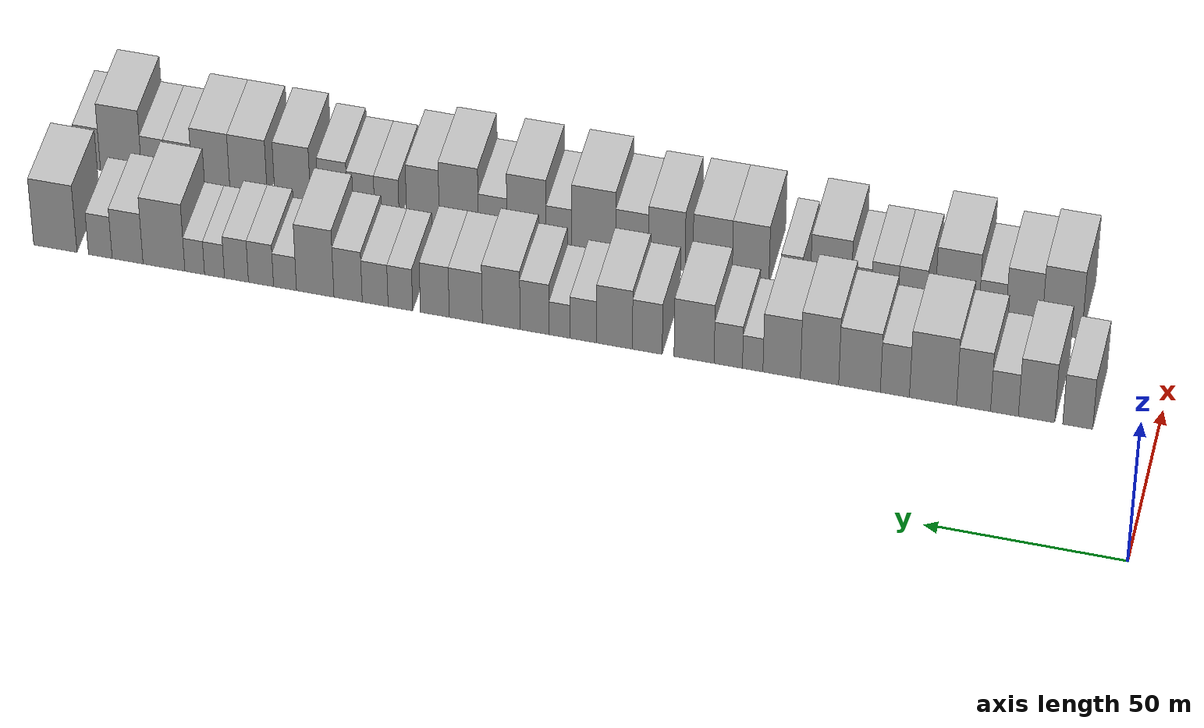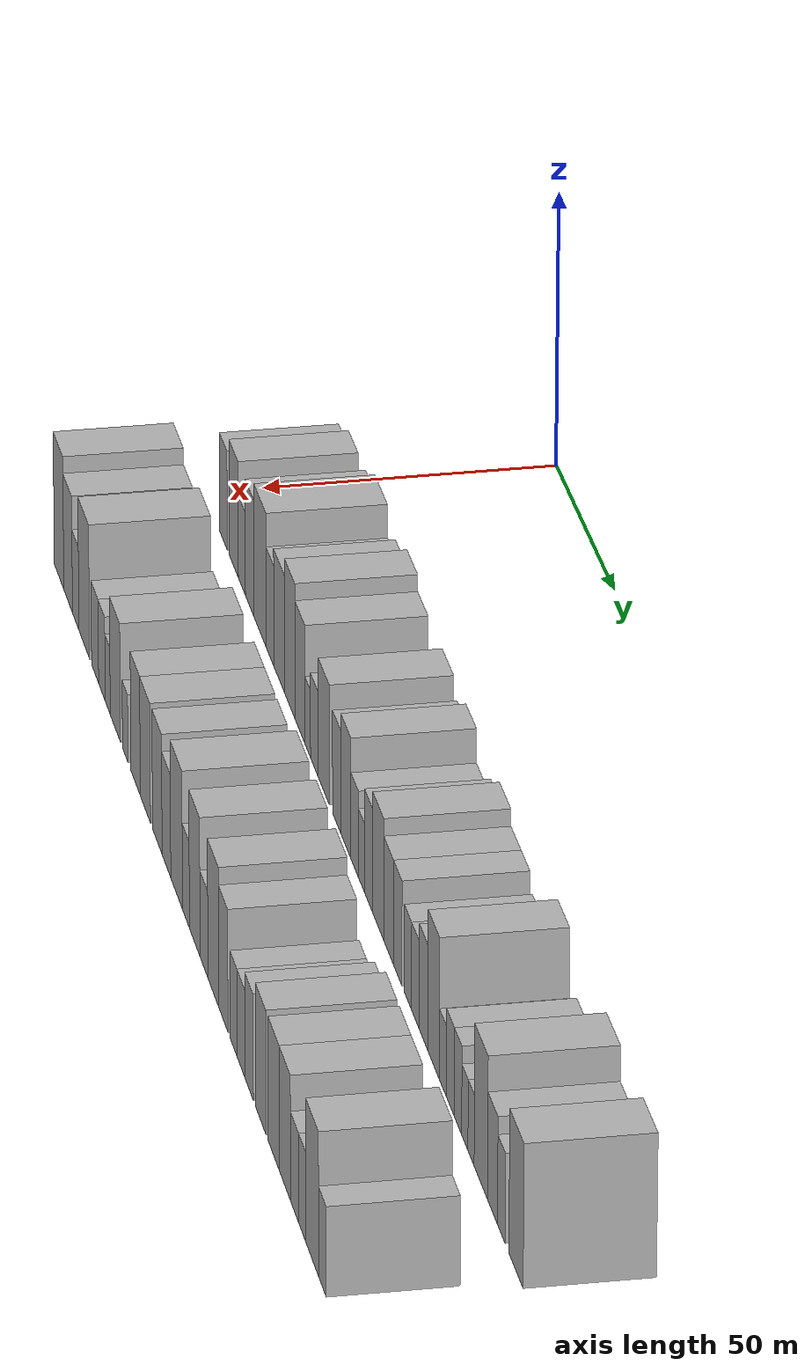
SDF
<sdf version="1.6">
 <world name="default">
  <model name="building_30">
   <static>1</static>
   <pose>50.0000 19.5542 0 0.000000 0.000000 0.000000</pose>
   <link name="link">
    <pose>0 0 9.00 0 0 0</pose>
    <collision name="collision"><geometry><box><size>20.0000 7.4699 18.0000</size></box></geometry></collision>
    <visual name="visual">
     <cast_shadows>0</cast_shadows>
     <geometry><box><size>20.0000 7.4699 18.0000</size></box></geometry>
     <material>
      <script>
       <uri>model://HANNAS_wall/materials/scripts</uri>
       <uri>model://HANNAS_wall/materials/textures</uri>
       <name>vrc/HANNAS_wall</name>
      </script>
     </material>
    </visual>
   </link>
  </model>
  <model name="building_31">
   <static>1</static>
   <pose>50.0000 29.8147 0 0.000000 0.000000 0.000000</pose>
   <link name="link">
    <pose>0 0 10.50 0 0 0</pose>
    <collision name="collision"><geometry><box><size>20.0000 9.0512 21.0000</size></box></geometry></collision>
    <visual name="visual">
     <cast_shadows>0</cast_shadows>
     <geometry><box><size>20.0000 9.0512 21.0000</size></box></geometry>
     <material>
      <script>
       <uri>model://HANNAS_wall/materials/scripts</uri>
       <uri>model://HANNAS_wall/materials/textures</uri>
       <name>vrc/HANNAS_wall</name>
      </script>
     </material>
    </visual>
   </link>
  </model>
  <model name="building_32">
   <static>1</static>
   <pose>50.0000 37.8138 0 0.000000 0.000000 0.000000</pose>
   <link name="link">
    <pose>0 0 7.50 0 0 0</pose>
    <collision name="collision"><geometry><box><size>20.0000 6.9470 15.0000</size></box></geometry></collision>
    <visual name="visual">
     <cast_shadows>0</cast_shadows>
     <geometry><box><size>20.0000 6.9470 15.0000</size></box></geometry>
     <material>
      <script>
       <uri>model://HANNAS_wall/materials/scripts</uri>
       <uri>model://HANNAS_wall/materials/textures</uri>
       <name>vrc/HANNAS_wall</name>
      </script>
     </material>
    </visual>
   </link>
  </model>
  <model name="building_33">
   <static>1</static>
   <pose>50.0000 45.5488 0 0.000000 0.000000 0.000000</pose>
   <link name="link">
    <pose>0 0 10.50 0 0 0</pose>
    <collision name="collision"><geometry><box><size>20.0000 8.5230 21.0000</size></box></geometry></collision>
    <visual name="visual">
     <cast_shadows>0</cast_shadows>
     <geometry><box><size>20.0000 8.5230 21.0000</size></box></geometry>
     <material>
      <script>
       <uri>model://HANNAS_wall/materials/scripts</uri>
       <uri>model://HANNAS_wall/materials/textures</uri>
       <name>vrc/HANNAS_wall</name>
      </script>
     </material>
    </visual>
   </link>
  </model>
  <model name="building_34">
   <static>1</static>
   <pose>50.0000 55.7005 0 0.000000 0.000000 0.000000</pose>
   <link name="link">
    <pose>0 0 12.00 0 0 0</pose>
    <collision name="collision"><geometry><box><size>20.0000 11.7803 24.0000</size></box></geometry></collision>
    <visual name="visual">
     <cast_shadows>0</cast_shadows>
     <geometry><box><size>20.0000 11.7803 24.0000</size></box></geometry>
     <material>
      <script>
       <uri>model://HANNAS_wall/materials/scripts</uri>
       <uri>model://HANNAS_wall/materials/textures</uri>
       <name>vrc/HANNAS_wall</name>
      </script>
     </material>
    </visual>
   </link>
  </model>
  <model name="building_35">
   <static>1</static>
   <pose>50.0000 65.2430 0 0.000000 0.000000 0.000000</pose>
   <link name="link">
    <pose>0 0 9.00 0 0 0</pose>
    <collision name="collision"><geometry><box><size>20.0000 7.3048 18.0000</size></box></geometry></collision>
    <visual name="visual">
     <cast_shadows>0</cast_shadows>
     <geometry><box><size>20.0000 7.3048 18.0000</size></box></geometry>
     <material>
      <script>
       <uri>model://HANNAS_wall/materials/scripts</uri>
       <uri>model://HANNAS_wall/materials/textures</uri>
       <name>vrc/HANNAS_wall</name>
      </script>
     </material>
    </visual>
   </link>
  </model>
  <model name="building_36">
   <static>1</static>
   <pose>50.0000 74.1311 0 0.000000 0.000000 0.000000</pose>
   <link name="link">
    <pose>0 0 10.50 0 0 0</pose>
    <collision name="collision"><geometry><box><size>20.0000 10.4713 21.0000</size></box></geometry></collision>
    <visual name="visual">
     <cast_shadows>0</cast_shadows>
     <geometry><box><size>20.0000 10.4713 21.0000</size></box></geometry>
     <material>
      <script>
       <uri>model://HANNAS_wall/materials/scripts</uri>
       <uri>model://HANNAS_wall/materials/textures</uri>
       <name>vrc/HANNAS_wall</name>
      </script>
     </material>
    </visual>
   </link>
  </model>
  <model name="building_37">
   <static>1</static>
   <pose>50.0000 84.1854 0 0.000000 0.000000 0.000000</pose>
   <link name="link">
    <pose>0 0 12.00 0 0 0</pose>
    <collision name="collision"><geometry><box><size>20.0000 9.6375 24.0000</size></box></geometry></collision>
    <visual name="visual">
     <cast_shadows>0</cast_shadows>
     <geometry><box><size>20.0000 9.6375 24.0000</size></box></geometry>
     <material>
      <script>
       <uri>model://HANNAS_wall/materials/scripts</uri>
       <uri>model://HANNAS_wall/materials/textures</uri>
       <name>vrc/HANNAS_wall</name>
      </script>
     </material>
    </visual>
   </link>
  </model>
  <model name="building_38">
   <static>1</static>
   <pose>50.0000 93.7305 0 0.000000 0.000000 0.000000</pose>
   <link name="link">
    <pose>0 0 10.50 0 0 0</pose>
    <collision name="collision"><geometry><box><size>20.0000 9.4528 21.0000</size></box></geometry></collision>
    <visual name="visual">
     <cast_shadows>0</cast_shadows>
     <geometry><box><size>20.0000 9.4528 21.0000</size></box></geometry>
     <material>
      <script>
       <uri>model://HANNAS_wall/materials/scripts</uri>
       <uri>model://HANNAS_wall/materials/textures</uri>
       <name>vrc/HANNAS_wall</name>
      </script>
     </material>
    </visual>
   </link>
  </model>
  <model name="building_39">
   <static>1</static>
   <pose>50.0000 101.0435 0 0.000000 0.000000 0.000000</pose>
   <link name="link">
    <pose>0 0 6.00 0 0 0</pose>
    <collision name="collision"><geometry><box><size>20.0000 5.1731 12.0000</size></box></geometry></collision>
    <visual name="visual">
     <cast_shadows>0</cast_shadows>
     <geometry><box><size>20.0000 5.1731 12.0000</size></box></geometry>
     <material>
      <script>
       <uri>model://HANNAS_wall/materials/scripts</uri>
       <uri>model://HANNAS_wall/materials/textures</uri>
       <name>vrc/HANNAS_wall</name>
      </script>
     </material>
    </visual>
   </link>
  </model>
  <model name="building_40">
   <static>1</static>
   <pose>50.0000 107.2192 0 0.000000 0.000000 0.000000</pose>
   <link name="link">
    <pose>0 0 7.50 0 0 0</pose>
    <collision name="collision"><geometry><box><size>20.0000 7.1782 15.0000</size></box></geometry></collision>
    <visual name="visual">
     <cast_shadows>0</cast_shadows>
     <geometry><box><size>20.0000 7.1782 15.0000</size></box></geometry>
     <material>
      <script>
       <uri>model://HANNAS_wall/materials/scripts</uri>
       <uri>model://HANNAS_wall/materials/textures</uri>
       <name>vrc/HANNAS_wall</name>
      </script>
     </material>
    </visual>
   </link>
  </model>
  <model name="building_41">
   <static>1</static>
   <pose>50.0000 115.8828 0 0.000000 0.000000 0.000000</pose>
   <link name="link">
    <pose>0 0 10.50 0 0 0</pose>
    <collision name="collision"><geometry><box><size>20.0000 10.1492 21.0000</size></box></geometry></collision>
    <visual name="visual">
     <cast_shadows>0</cast_shadows>
     <geometry><box><size>20.0000 10.1492 21.0000</size></box></geometry>
     <material>
      <script>
       <uri>model://HANNAS_wall/materials/scripts</uri>
       <uri>model://HANNAS_wall/materials/textures</uri>
       <name>vrc/HANNAS_wall</name>
      </script>
     </material>
    </visual>
   </link>
  </model>
  <model name="building_42">
   <static>1</static>
   <pose>50.0000 127.7314 0 0.000000 0.000000 0.000000</pose>
   <link name="link">
    <pose>0 0 9.00 0 0 0</pose>
    <collision name="collision"><geometry><box><size>20.0000 7.5479 18.0000</size></box></geometry></collision>
    <visual name="visual">
     <cast_shadows>0</cast_shadows>
     <geometry><box><size>20.0000 7.5479 18.0000</size></box></geometry>
     <material>
      <script>
       <uri>model://HANNAS_wall/materials/scripts</uri>
       <uri>model://HANNAS_wall/materials/textures</uri>
       <name>vrc/HANNAS_wall</name>
      </script>
     </material>
    </visual>
   </link>
  </model>
  <model name="building_43">
   <static>1</static>
   <pose>50.0000 136.0665 0 0.000000 0.000000 0.000000</pose>
   <link name="link">
    <pose>0 0 10.50 0 0 0</pose>
    <collision name="collision"><geometry><box><size>20.0000 9.1223 21.0000</size></box></geometry></collision>
    <visual name="visual">
     <cast_shadows>0</cast_shadows>
     <geometry><box><size>20.0000 9.1223 21.0000</size></box></geometry>
     <material>
      <script>
       <uri>model://HANNAS_wall/materials/scripts</uri>
       <uri>model://HANNAS_wall/materials/textures</uri>
       <name>vrc/HANNAS_wall</name>
      </script>
     </material>
    </visual>
   </link>
  </model>
  <model name="building_44">
   <static>1</static>
   <pose>50.0000 144.0214 0 0.000000 0.000000 0.000000</pose>
   <link name="link">
    <pose>0 0 7.50 0 0 0</pose>
    <collision name="collision"><geometry><box><size>20.0000 6.7875 15.0000</size></box></geometry></collision>
    <visual name="visual">
     <cast_shadows>0</cast_shadows>
     <geometry><box><size>20.0000 6.7875 15.0000</size></box></geometry>
     <material>
      <script>
       <uri>model://HANNAS_wall/materials/scripts</uri>
       <uri>model://HANNAS_wall/materials/textures</uri>
       <name>vrc/HANNAS_wall</name>
      </script>
     </material>
    </visual>
   </link>
  </model>
  <model name="building_45">
   <static>1</static>
   <pose>50.0000 150.0881 0 0.000000 0.000000 0.000000</pose>
   <link name="link">
    <pose>0 0 6.00 0 0 0</pose>
    <collision name="collision"><geometry><box><size>20.0000 5.3460 12.0000</size></box></geometry></collision>
    <visual name="visual">
     <cast_shadows>0</cast_shadows>
     <geometry><box><size>20.0000 5.3460 12.0000</size></box></geometry>
     <material>
      <script>
       <uri>model://HANNAS_wall/materials/scripts</uri>
       <uri>model://HANNAS_wall/materials/textures</uri>
       <name>vrc/HANNAS_wall</name>
      </script>
     </material>
    </visual>
   </link>
  </model>
  <model name="building_46">
   <static>1</static>
   <pose>50.0000 156.4604 0 0.000000 0.000000 0.000000</pose>
   <link name="link">
    <pose>0 0 9.00 0 0 0</pose>
    <collision name="collision"><geometry><box><size>20.0000 7.3986 18.0000</size></box></geometry></collision>
    <visual name="visual">
     <cast_shadows>0</cast_shadows>
     <geometry><box><size>20.0000 7.3986 18.0000</size></box></geometry>
     <material>
      <script>
       <uri>model://HANNAS_wall/materials/scripts</uri>
       <uri>model://HANNAS_wall/materials/textures</uri>
       <name>vrc/HANNAS_wall</name>
      </script>
     </material>
    </visual>
   </link>
  </model>
  <model name="building_47">
   <static>1</static>
   <pose>50.0000 164.9951 0 0.000000 0.000000 0.000000</pose>
   <link name="link">
    <pose>0 0 10.50 0 0 0</pose>
    <collision name="collision"><geometry><box><size>20.0000 9.6708 21.0000</size></box></geometry></collision>
    <visual name="visual">
     <cast_shadows>0</cast_shadows>
     <geometry><box><size>20.0000 9.6708 21.0000</size></box></geometry>
     <material>
      <script>
       <uri>model://HANNAS_wall/materials/scripts</uri>
       <uri>model://HANNAS_wall/materials/textures</uri>
       <name>vrc/HANNAS_wall</name>
      </script>
     </material>
    </visual>
   </link>
  </model>
  <model name="building_48">
   <static>1</static>
   <pose>50.0000 174.0774 0 0.000000 0.000000 0.000000</pose>
   <link name="link">
    <pose>0 0 9.00 0 0 0</pose>
    <collision name="collision"><geometry><box><size>20.0000 8.4938 18.0000</size></box></geometry></collision>
    <visual name="visual">
     <cast_shadows>0</cast_shadows>
     <geometry><box><size>20.0000 8.4938 18.0000</size></box></geometry>
     <material>
      <script>
       <uri>model://HANNAS_wall/materials/scripts</uri>
       <uri>model://HANNAS_wall/materials/textures</uri>
       <name>vrc/HANNAS_wall</name>
      </script>
     </material>
    </visual>
   </link>
  </model>
  <model name="building_49">
   <static>1</static>
   <pose>50.0000 182.0270 0 0.000000 0.000000 0.000000</pose>
   <link name="link">
    <pose>0 0 9.00 0 0 0</pose>
    <collision name="collision"><geometry><box><size>20.0000 7.4053 18.0000</size></box></geometry></collision>
    <visual name="visual">
     <cast_shadows>0</cast_shadows>
     <geometry><box><size>20.0000 7.4053 18.0000</size></box></geometry>
     <material>
      <script>
       <uri>model://HANNAS_wall/materials/scripts</uri>
       <uri>model://HANNAS_wall/materials/textures</uri>
       <name>vrc/HANNAS_wall</name>
      </script>
     </material>
    </visual>
   </link>
  </model>
  <model name="building_50">
   <static>1</static>
   <pose>50.0000 190.8925 0 0.000000 0.000000 0.000000</pose>
   <link name="link">
    <pose>0 0 7.50 0 0 0</pose>
    <collision name="collision"><geometry><box><size>20.0000 6.3257 15.0000</size></box></geometry></collision>
    <visual name="visual">
     <cast_shadows>0</cast_shadows>
     <geometry><box><size>20.0000 6.3257 15.0000</size></box></geometry>
     <material>
      <script>
       <uri>model://HANNAS_wall/materials/scripts</uri>
       <uri>model://HANNAS_wall/materials/textures</uri>
       <name>vrc/HANNAS_wall</name>
      </script>
     </material>
    </visual>
   </link>
  </model>
  <model name="building_51">
   <static>1</static>
   <pose>50.0000 197.3917 0 0.000000 0.000000 0.000000</pose>
   <link name="link">
    <pose>0 0 7.50 0 0 0</pose>
    <collision name="collision"><geometry><box><size>20.0000 6.6727 15.0000</size></box></geometry></collision>
    <visual name="visual">
     <cast_shadows>0</cast_shadows>
     <geometry><box><size>20.0000 6.6727 15.0000</size></box></geometry>
     <material>
      <script>
       <uri>model://HANNAS_wall/materials/scripts</uri>
       <uri>model://HANNAS_wall/materials/textures</uri>
       <name>vrc/HANNAS_wall</name>
      </script>
     </material>
    </visual>
   </link>
  </model>
  <model name="building_52">
   <static>1</static>
   <pose>50.0000 204.3835 0 0.000000 0.000000 0.000000</pose>
   <link name="link">
    <pose>0 0 9.00 0 0 0</pose>
    <collision name="collision"><geometry><box><size>20.0000 7.3110 18.0000</size></box></geometry></collision>
    <visual name="visual">
     <cast_shadows>0</cast_shadows>
     <geometry><box><size>20.0000 7.3110 18.0000</size></box></geometry>
     <material>
      <script>
       <uri>model://HANNAS_wall/materials/scripts</uri>
       <uri>model://HANNAS_wall/materials/textures</uri>
       <name>vrc/HANNAS_wall</name>
      </script>
     </material>
    </visual>
   </link>
  </model>
  <model name="building_53">
   <static>1</static>
   <pose>50.0000 212.8784 0 0.000000 0.000000 0.000000</pose>
   <link name="link">
    <pose>0 0 12.00 0 0 0</pose>
    <collision name="collision"><geometry><box><size>20.0000 9.6787 24.0000</size></box></geometry></collision>
    <visual name="visual">
     <cast_shadows>0</cast_shadows>
     <geometry><box><size>20.0000 9.6787 24.0000</size></box></geometry>
     <material>
      <script>
       <uri>model://HANNAS_wall/materials/scripts</uri>
       <uri>model://HANNAS_wall/materials/textures</uri>
       <name>vrc/HANNAS_wall</name>
      </script>
     </material>
    </visual>
   </link>
  </model>
  <model name="building_54">
   <static>1</static>
   <pose>50.0000 220.6890 0 0.000000 0.000000 0.000000</pose>
   <link name="link">
    <pose>0 0 6.00 0 0 0</pose>
    <collision name="collision"><geometry><box><size>20.0000 5.9426 12.0000</size></box></geometry></collision>
    <visual name="visual">
     <cast_shadows>0</cast_shadows>
     <geometry><box><size>20.0000 5.9426 12.0000</size></box></geometry>
     <material>
      <script>
       <uri>model://HANNAS_wall/materials/scripts</uri>
       <uri>model://HANNAS_wall/materials/textures</uri>
       <name>vrc/HANNAS_wall</name>
      </script>
     </material>
    </visual>
   </link>
  </model>
  <model name="building_55">
   <static>1</static>
   <pose>50.0000 226.9153 0 0.000000 0.000000 0.000000</pose>
   <link name="link">
    <pose>0 0 7.50 0 0 0</pose>
    <collision name="collision"><geometry><box><size>20.0000 6.5100 15.0000</size></box></geometry></collision>
    <visual name="visual">
     <cast_shadows>0</cast_shadows>
     <geometry><box><size>20.0000 6.5100 15.0000</size></box></geometry>
     <material>
      <script>
       <uri>model://HANNAS_wall/materials/scripts</uri>
       <uri>model://HANNAS_wall/materials/textures</uri>
       <name>vrc/HANNAS_wall</name>
      </script>
     </material>
    </visual>
   </link>
  </model>
  <model name="building_56">
   <static>1</static>
   <pose>50.0000 233.2833 0 0.000000 0.000000 0.000000</pose>
   <link name="link">
    <pose>0 0 7.50 0 0 0</pose>
    <collision name="collision"><geometry><box><size>20.0000 6.2258 15.0000</size></box></geometry></collision>
    <visual name="visual">
     <cast_shadows>0</cast_shadows>
     <geometry><box><size>20.0000 6.2258 15.0000</size></box></geometry>
     <material>
      <script>
       <uri>model://HANNAS_wall/materials/scripts</uri>
       <uri>model://HANNAS_wall/materials/textures</uri>
       <name>vrc/HANNAS_wall</name>
      </script>
     </material>
    </visual>
   </link>
  </model>
  <model name="building_57">
   <static>1</static>
   <pose>50.0000 238.9881 0 0.000000 0.000000 0.000000</pose>
   <link name="link">
    <pose>0 0 6.00 0 0 0</pose>
    <collision name="collision"><geometry><box><size>20.0000 5.1839 12.0000</size></box></geometry></collision>
    <visual name="visual">
     <cast_shadows>0</cast_shadows>
     <geometry><box><size>20.0000 5.1839 12.0000</size></box></geometry>
     <material>
      <script>
       <uri>model://HANNAS_wall/materials/scripts</uri>
       <uri>model://HANNAS_wall/materials/textures</uri>
       <name>vrc/HANNAS_wall</name>
      </script>
     </material>
    </visual>
   </link>
  </model>
  <model name="building_58">
   <static>1</static>
   <pose>50.0000 244.1322 0 0.000000 0.000000 0.000000</pose>
   <link name="link">
    <pose>0 0 6.00 0 0 0</pose>
    <collision name="collision"><geometry><box><size>20.0000 5.1043 12.0000</size></box></geometry></collision>
    <visual name="visual">
     <cast_shadows>0</cast_shadows>
     <geometry><box><size>20.0000 5.1043 12.0000</size></box></geometry>
     <material>
      <script>
       <uri>model://HANNAS_wall/materials/scripts</uri>
       <uri>model://HANNAS_wall/materials/textures</uri>
       <name>vrc/HANNAS_wall</name>
      </script>
     </material>
    </visual>
   </link>
  </model>
  <model name="building_59">
   <static>1</static>
   <pose>50.0000 252.1347 0 0.000000 0.000000 0.000000</pose>
   <link name="link">
    <pose>0 0 12.00 0 0 0</pose>
    <collision name="collision"><geometry><box><size>20.0000 10.9007 24.0000</size></box></geometry></collision>
    <visual name="visual">
     <cast_shadows>0</cast_shadows>
     <geometry><box><size>20.0000 10.9007 24.0000</size></box></geometry>
     <material>
      <script>
       <uri>model://HANNAS_wall/materials/scripts</uri>
       <uri>model://HANNAS_wall/materials/textures</uri>
       <name>vrc/HANNAS_wall</name>
      </script>
     </material>
    </visual>
   </link>
  </model>
  <model name="building_60">
   <static>1</static>
   <pose>50.0000 261.6188 0 0.000000 0.000000 0.000000</pose>
   <link name="link">
    <pose>0 0 9.00 0 0 0</pose>
    <collision name="collision"><geometry><box><size>20.0000 8.0674 18.0000</size></box></geometry></collision>
    <visual name="visual">
     <cast_shadows>0</cast_shadows>
     <geometry><box><size>20.0000 8.0674 18.0000</size></box></geometry>
     <material>
      <script>
       <uri>model://HANNAS_wall/materials/scripts</uri>
       <uri>model://HANNAS_wall/materials/textures</uri>
       <name>vrc/HANNAS_wall</name>
      </script>
     </material>
    </visual>
   </link>
  </model>
  <model name="building_61">
   <static>1</static>
   <pose>50.0000 268.7468 0 0.000000 0.000000 0.000000</pose>
   <link name="link">
    <pose>0 0 7.50 0 0 0</pose>
    <collision name="collision"><geometry><box><size>20.0000 6.1887 15.0000</size></box></geometry></collision>
    <visual name="visual">
     <cast_shadows>0</cast_shadows>
     <geometry><box><size>20.0000 6.1887 15.0000</size></box></geometry>
     <material>
      <script>
       <uri>model://HANNAS_wall/materials/scripts</uri>
       <uri>model://HANNAS_wall/materials/textures</uri>
       <name>vrc/HANNAS_wall</name>
      </script>
     </material>
    </visual>
   </link>
  </model>
  <model name="building_62">
   <static>1</static>
   <pose>50.0000 280.5138 0 0.000000 0.000000 0.000000</pose>
   <link name="link">
    <pose>0 0 12.00 0 0 0</pose>
    <collision name="collision"><geometry><box><size>20.0000 11.3453 24.0000</size></box></geometry></collision>
    <visual name="visual">
     <cast_shadows>0</cast_shadows>
     <geometry><box><size>20.0000 11.3453 24.0000</size></box></geometry>
     <material>
      <script>
       <uri>model://HANNAS_wall/materials/scripts</uri>
       <uri>model://HANNAS_wall/materials/textures</uri>
       <name>vrc/HANNAS_wall</name>
      </script>
     </material>
    </visual>
   </link>
  </model>
  <model name="building_95">
   <static>1</static>
   <pose>79.0000 28.8982 0 0.000000 0.000000 0.000000</pose>
   <link name="link">
    <pose>0 0 12.00 0 0 0</pose>
    <collision name="collision"><geometry><box><size>20.0000 10.1154 24.0000</size></box></geometry></collision>
    <visual name="visual">
     <cast_shadows>0</cast_shadows>
     <geometry><box><size>20.0000 10.1154 24.0000</size></box></geometry>
     <material>
      <script>
       <uri>model://HANNAS_wall/materials/scripts</uri>
       <uri>model://HANNAS_wall/materials/textures</uri>
       <name>vrc/HANNAS_wall</name>
      </script>
     </material>
    </visual>
   </link>
  </model>
  <model name="building_96">
   <static>1</static>
   <pose>79.0000 38.5388 0 0.000000 0.000000 0.000000</pose>
   <link name="link">
    <pose>0 0 10.50 0 0 0</pose>
    <collision name="collision"><geometry><box><size>20.0000 9.1659 21.0000</size></box></geometry></collision>
    <visual name="visual">
     <cast_shadows>0</cast_shadows>
     <geometry><box><size>20.0000 9.1659 21.0000</size></box></geometry>
     <material>
      <script>
       <uri>model://HANNAS_wall/materials/scripts</uri>
       <uri>model://HANNAS_wall/materials/textures</uri>
       <name>vrc/HANNAS_wall</name>
      </script>
     </material>
    </visual>
   </link>
  </model>
  <model name="building_97">
   <static>1</static>
   <pose>79.0000 46.5281 0 0.000000 0.000000 0.000000</pose>
   <link name="link">
    <pose>0 0 7.50 0 0 0</pose>
    <collision name="collision"><geometry><box><size>20.0000 6.8126 15.0000</size></box></geometry></collision>
    <visual name="visual">
     <cast_shadows>0</cast_shadows>
     <geometry><box><size>20.0000 6.8126 15.0000</size></box></geometry>
     <material>
      <script>
       <uri>model://HANNAS_wall/materials/scripts</uri>
       <uri>model://HANNAS_wall/materials/textures</uri>
       <name>vrc/HANNAS_wall</name>
      </script>
     </material>
    </visual>
   </link>
  </model>
  <model name="building_98">
   <static>1</static>
   <pose>79.0000 55.4967 0 0.000000 0.000000 0.000000</pose>
   <link name="link">
    <pose>0 0 12.00 0 0 0</pose>
    <collision name="collision"><geometry><box><size>20.0000 11.1246 24.0000</size></box></geometry></collision>
    <visual name="visual">
     <cast_shadows>0</cast_shadows>
     <geometry><box><size>20.0000 11.1246 24.0000</size></box></geometry>
     <material>
      <script>
       <uri>model://HANNAS_wall/materials/scripts</uri>
       <uri>model://HANNAS_wall/materials/textures</uri>
       <name>vrc/HANNAS_wall</name>
      </script>
     </material>
    </visual>
   </link>
  </model>
  <model name="building_99">
   <static>1</static>
   <pose>79.0000 66.7024 0 0.000000 0.000000 0.000000</pose>
   <link name="link">
    <pose>0 0 7.50 0 0 0</pose>
    <collision name="collision"><geometry><box><size>20.0000 7.2868 15.0000</size></box></geometry></collision>
    <visual name="visual">
     <cast_shadows>0</cast_shadows>
     <geometry><box><size>20.0000 7.2868 15.0000</size></box></geometry>
     <material>
      <script>
       <uri>model://HANNAS_wall/materials/scripts</uri>
       <uri>model://HANNAS_wall/materials/textures</uri>
       <name>vrc/HANNAS_wall</name>
      </script>
     </material>
    </visual>
   </link>
  </model>
  <model name="building_100">
   <static>1</static>
   <pose>79.0000 73.7548 0 0.000000 0.000000 0.000000</pose>
   <link name="link">
    <pose>0 0 7.50 0 0 0</pose>
    <collision name="collision"><geometry><box><size>20.0000 6.8180 15.0000</size></box></geometry></collision>
    <visual name="visual">
     <cast_shadows>0</cast_shadows>
     <geometry><box><size>20.0000 6.8180 15.0000</size></box></geometry>
     <material>
      <script>
       <uri>model://HANNAS_wall/materials/scripts</uri>
       <uri>model://HANNAS_wall/materials/textures</uri>
       <name>vrc/HANNAS_wall</name>
      </script>
     </material>
    </visual>
   </link>
  </model>
  <model name="building_101">
   <static>1</static>
   <pose>79.0000 79.7370 0 0.000000 0.000000 0.000000</pose>
   <link name="link">
    <pose>0 0 6.00 0 0 0</pose>
    <collision name="collision"><geometry><box><size>20.0000 5.1464 12.0000</size></box></geometry></collision>
    <visual name="visual">
     <cast_shadows>0</cast_shadows>
     <geometry><box><size>20.0000 5.1464 12.0000</size></box></geometry>
     <material>
      <script>
       <uri>model://HANNAS_wall/materials/scripts</uri>
       <uri>model://HANNAS_wall/materials/textures</uri>
       <name>vrc/HANNAS_wall</name>
      </script>
     </material>
    </visual>
   </link>
  </model>
  <model name="building_102">
   <static>1</static>
   <pose>79.0000 87.5160 0 0.000000 0.000000 0.000000</pose>
   <link name="link">
    <pose>0 0 10.50 0 0 0</pose>
    <collision name="collision"><geometry><box><size>20.0000 10.4114 21.0000</size></box></geometry></collision>
    <visual name="visual">
     <cast_shadows>0</cast_shadows>
     <geometry><box><size>20.0000 10.4114 21.0000</size></box></geometry>
     <material>
      <script>
       <uri>model://HANNAS_wall/materials/scripts</uri>
       <uri>model://HANNAS_wall/materials/textures</uri>
       <name>vrc/HANNAS_wall</name>
      </script>
     </material>
    </visual>
   </link>
  </model>
  <model name="building_103">
   <static>1</static>
   <pose>79.0000 97.4876 0 0.000000 0.000000 0.000000</pose>
   <link name="link">
    <pose>0 0 6.00 0 0 0</pose>
    <collision name="collision"><geometry><box><size>20.0000 5.5317 12.0000</size></box></geometry></collision>
    <visual name="visual">
     <cast_shadows>0</cast_shadows>
     <geometry><box><size>20.0000 5.5317 12.0000</size></box></geometry>
     <material>
      <script>
       <uri>model://HANNAS_wall/materials/scripts</uri>
       <uri>model://HANNAS_wall/materials/textures</uri>
       <name>vrc/HANNAS_wall</name>
      </script>
     </material>
    </visual>
   </link>
  </model>
  <model name="building_104">
   <static>1</static>
   <pose>79.0000 107.9619 0 0.000000 0.000000 0.000000</pose>
   <link name="link">
    <pose>0 0 10.50 0 0 0</pose>
    <collision name="collision"><geometry><box><size>20.0000 9.4169 21.0000</size></box></geometry></collision>
    <visual name="visual">
     <cast_shadows>0</cast_shadows>
     <geometry><box><size>20.0000 9.4169 21.0000</size></box></geometry>
     <material>
      <script>
       <uri>model://HANNAS_wall/materials/scripts</uri>
       <uri>model://HANNAS_wall/materials/textures</uri>
       <name>vrc/HANNAS_wall</name>
      </script>
     </material>
    </visual>
   </link>
  </model>
  <model name="building_105">
   <static>1</static>
   <pose>79.0000 117.6975 0 0.000000 0.000000 0.000000</pose>
   <link name="link">
    <pose>0 0 10.50 0 0 0</pose>
    <collision name="collision"><geometry><box><size>20.0000 10.0542 21.0000</size></box></geometry></collision>
    <visual name="visual">
     <cast_shadows>0</cast_shadows>
     <geometry><box><size>20.0000 10.0542 21.0000</size></box></geometry>
     <material>
      <script>
       <uri>model://HANNAS_wall/materials/scripts</uri>
       <uri>model://HANNAS_wall/materials/textures</uri>
       <name>vrc/HANNAS_wall</name>
      </script>
     </material>
    </visual>
   </link>
  </model>
  <model name="building_106">
   <static>1</static>
   <pose>79.0000 129.4257 0 0.000000 0.000000 0.000000</pose>
   <link name="link">
    <pose>0 0 10.50 0 0 0</pose>
    <collision name="collision"><geometry><box><size>20.0000 9.4022 21.0000</size></box></geometry></collision>
    <visual name="visual">
     <cast_shadows>0</cast_shadows>
     <geometry><box><size>20.0000 9.4022 21.0000</size></box></geometry>
     <material>
      <script>
       <uri>model://HANNAS_wall/materials/scripts</uri>
       <uri>model://HANNAS_wall/materials/textures</uri>
       <name>vrc/HANNAS_wall</name>
      </script>
     </material>
    </visual>
   </link>
  </model>
  <model name="building_107">
   <static>1</static>
   <pose>79.0000 138.3400 0 0.000000 0.000000 0.000000</pose>
   <link name="link">
    <pose>0 0 9.00 0 0 0</pose>
    <collision name="collision"><geometry><box><size>20.0000 8.4265 18.0000</size></box></geometry></collision>
    <visual name="visual">
     <cast_shadows>0</cast_shadows>
     <geometry><box><size>20.0000 8.4265 18.0000</size></box></geometry>
     <material>
      <script>
       <uri>model://HANNAS_wall/materials/scripts</uri>
       <uri>model://HANNAS_wall/materials/textures</uri>
       <name>vrc/HANNAS_wall</name>
      </script>
     </material>
    </visual>
   </link>
  </model>
  <model name="building_108">
   <static>1</static>
   <pose>79.0000 148.2269 0 0.000000 0.000000 0.000000</pose>
   <link name="link">
    <pose>0 0 12.00 0 0 0</pose>
    <collision name="collision"><geometry><box><size>20.0000 11.3472 24.0000</size></box></geometry></collision>
    <visual name="visual">
     <cast_shadows>0</cast_shadows>
     <geometry><box><size>20.0000 11.3472 24.0000</size></box></geometry>
     <material>
      <script>
       <uri>model://HANNAS_wall/materials/scripts</uri>
       <uri>model://HANNAS_wall/materials/textures</uri>
       <name>vrc/HANNAS_wall</name>
      </script>
     </material>
    </visual>
   </link>
  </model>
  <model name="building_109">
   <static>1</static>
   <pose>79.0000 157.2004 0 0.000000 0.000000 0.000000</pose>
   <link name="link">
    <pose>0 0 7.50 0 0 0</pose>
    <collision name="collision"><geometry><box><size>20.0000 6.5998 15.0000</size></box></geometry></collision>
    <visual name="visual">
     <cast_shadows>0</cast_shadows>
     <geometry><box><size>20.0000 6.5998 15.0000</size></box></geometry>
     <material>
      <script>
       <uri>model://HANNAS_wall/materials/scripts</uri>
       <uri>model://HANNAS_wall/materials/textures</uri>
       <name>vrc/HANNAS_wall</name>
      </script>
     </material>
    </visual>
   </link>
  </model>
  <model name="building_110">
   <static>1</static>
   <pose>79.0000 165.5691 0 0.000000 0.000000 0.000000</pose>
   <link name="link">
    <pose>0 0 12.00 0 0 0</pose>
    <collision name="collision"><geometry><box><size>20.0000 10.1375 24.0000</size></box></geometry></collision>
    <visual name="visual">
     <cast_shadows>0</cast_shadows>
     <geometry><box><size>20.0000 10.1375 24.0000</size></box></geometry>
     <material>
      <script>
       <uri>model://HANNAS_wall/materials/scripts</uri>
       <uri>model://HANNAS_wall/materials/textures</uri>
       <name>vrc/HANNAS_wall</name>
      </script>
     </material>
    </visual>
   </link>
  </model>
  <model name="building_111">
   <static>1</static>
   <pose>79.0000 174.3401 0 0.000000 0.000000 0.000000</pose>
   <link name="link">
    <pose>0 0 7.50 0 0 0</pose>
    <collision name="collision"><geometry><box><size>20.0000 7.4045 15.0000</size></box></geometry></collision>
    <visual name="visual">
     <cast_shadows>0</cast_shadows>
     <geometry><box><size>20.0000 7.4045 15.0000</size></box></geometry>
     <material>
      <script>
       <uri>model://HANNAS_wall/materials/scripts</uri>
       <uri>model://HANNAS_wall/materials/textures</uri>
       <name>vrc/HANNAS_wall</name>
      </script>
     </material>
    </visual>
   </link>
  </model>
  <model name="building_112">
   <static>1</static>
   <pose>79.0000 183.1229 0 0.000000 0.000000 0.000000</pose>
   <link name="link">
    <pose>0 0 12.00 0 0 0</pose>
    <collision name="collision"><geometry><box><size>20.0000 10.1612 24.0000</size></box></geometry></collision>
    <visual name="visual">
     <cast_shadows>0</cast_shadows>
     <geometry><box><size>20.0000 10.1612 24.0000</size></box></geometry>
     <material>
      <script>
       <uri>model://HANNAS_wall/materials/scripts</uri>
       <uri>model://HANNAS_wall/materials/textures</uri>
       <name>vrc/HANNAS_wall</name>
      </script>
     </material>
    </visual>
   </link>
  </model>
  <model name="building_113">
   <static>1</static>
   <pose>79.0000 192.4582 0 0.000000 0.000000 0.000000</pose>
   <link name="link">
    <pose>0 0 10.50 0 0 0</pose>
    <collision name="collision"><geometry><box><size>20.0000 8.5094 21.0000</size></box></geometry></collision>
    <visual name="visual">
     <cast_shadows>0</cast_shadows>
     <geometry><box><size>20.0000 8.5094 21.0000</size></box></geometry>
     <material>
      <script>
       <uri>model://HANNAS_wall/materials/scripts</uri>
       <uri>model://HANNAS_wall/materials/textures</uri>
       <name>vrc/HANNAS_wall</name>
      </script>
     </material>
    </visual>
   </link>
  </model>
  <model name="building_114">
   <static>1</static>
   <pose>79.0000 201.9091 0 0.000000 0.000000 0.000000</pose>
   <link name="link">
    <pose>0 0 7.50 0 0 0</pose>
    <collision name="collision"><geometry><box><size>20.0000 6.3924 15.0000</size></box></geometry></collision>
    <visual name="visual">
     <cast_shadows>0</cast_shadows>
     <geometry><box><size>20.0000 6.3924 15.0000</size></box></geometry>
     <material>
      <script>
       <uri>model://HANNAS_wall/materials/scripts</uri>
       <uri>model://HANNAS_wall/materials/textures</uri>
       <name>vrc/HANNAS_wall</name>
      </script>
     </material>
    </visual>
   </link>
  </model>
  <model name="building_115">
   <static>1</static>
   <pose>79.0000 208.6637 0 0.000000 0.000000 0.000000</pose>
   <link name="link">
    <pose>0 0 7.50 0 0 0</pose>
    <collision name="collision"><geometry><box><size>20.0000 7.1168 15.0000</size></box></geometry></collision>
    <visual name="visual">
     <cast_shadows>0</cast_shadows>
     <geometry><box><size>20.0000 7.1168 15.0000</size></box></geometry>
     <material>
      <script>
       <uri>model://HANNAS_wall/materials/scripts</uri>
       <uri>model://HANNAS_wall/materials/textures</uri>
       <name>vrc/HANNAS_wall</name>
      </script>
     </material>
    </visual>
   </link>
  </model>
  <model name="building_116">
   <static>1</static>
   <pose>79.0000 216.0360 0 0.000000 0.000000 0.000000</pose>
   <link name="link">
    <pose>0 0 9.00 0 0 0</pose>
    <collision name="collision"><geometry><box><size>20.0000 7.6278 18.0000</size></box></geometry></collision>
    <visual name="visual">
     <cast_shadows>0</cast_shadows>
     <geometry><box><size>20.0000 7.6278 18.0000</size></box></geometry>
     <material>
      <script>
       <uri>model://HANNAS_wall/materials/scripts</uri>
       <uri>model://HANNAS_wall/materials/textures</uri>
       <name>vrc/HANNAS_wall</name>
      </script>
     </material>
    </visual>
   </link>
  </model>
  <model name="building_117">
   <static>1</static>
   <pose>79.0000 226.5368 0 0.000000 0.000000 0.000000</pose>
   <link name="link">
    <pose>0 0 10.50 0 0 0</pose>
    <collision name="collision"><geometry><box><size>20.0000 9.3739 21.0000</size></box></geometry></collision>
    <visual name="visual">
     <cast_shadows>0</cast_shadows>
     <geometry><box><size>20.0000 9.3739 21.0000</size></box></geometry>
     <material>
      <script>
       <uri>model://HANNAS_wall/materials/scripts</uri>
       <uri>model://HANNAS_wall/materials/textures</uri>
       <name>vrc/HANNAS_wall</name>
      </script>
     </material>
    </visual>
   </link>
  </model>
  <model name="building_118">
   <static>1</static>
   <pose>79.0000 238.1355 0 0.000000 0.000000 0.000000</pose>
   <link name="link">
    <pose>0 0 10.50 0 0 0</pose>
    <collision name="collision"><geometry><box><size>20.0000 9.8233 21.0000</size></box></geometry></collision>
    <visual name="visual">
     <cast_shadows>0</cast_shadows>
     <geometry><box><size>20.0000 9.8233 21.0000</size></box></geometry>
     <material>
      <script>
       <uri>model://HANNAS_wall/materials/scripts</uri>
       <uri>model://HANNAS_wall/materials/textures</uri>
       <name>vrc/HANNAS_wall</name>
      </script>
     </material>
    </visual>
   </link>
  </model>
  <model name="building_119">
   <static>1</static>
   <pose>79.0000 247.9779 0 0.000000 0.000000 0.000000</pose>
   <link name="link">
    <pose>0 0 10.50 0 0 0</pose>
    <collision name="collision"><geometry><box><size>20.0000 9.8615 21.0000</size></box></geometry></collision>
    <visual name="visual">
     <cast_shadows>0</cast_shadows>
     <geometry><box><size>20.0000 9.8615 21.0000</size></box></geometry>
     <material>
      <script>
       <uri>model://HANNAS_wall/materials/scripts</uri>
       <uri>model://HANNAS_wall/materials/textures</uri>
       <name>vrc/HANNAS_wall</name>
      </script>
     </material>
    </visual>
   </link>
  </model>
  <model name="building_120">
   <static>1</static>
   <pose>79.0000 256.5379 0 0.000000 0.000000 0.000000</pose>
   <link name="link">
    <pose>0 0 7.50 0 0 0</pose>
    <collision name="collision"><geometry><box><size>20.0000 7.2585 15.0000</size></box></geometry></collision>
    <visual name="visual">
     <cast_shadows>0</cast_shadows>
     <geometry><box><size>20.0000 7.2585 15.0000</size></box></geometry>
     <material>
      <script>
       <uri>model://HANNAS_wall/materials/scripts</uri>
       <uri>model://HANNAS_wall/materials/textures</uri>
       <name>vrc/HANNAS_wall</name>
      </script>
     </material>
    </visual>
   </link>
  </model>
  <model name="building_121">
   <static>1</static>
   <pose>79.0000 263.2036 0 0.000000 0.000000 0.000000</pose>
   <link name="link">
    <pose>0 0 7.50 0 0 0</pose>
    <collision name="collision"><geometry><box><size>20.0000 6.0730 15.0000</size></box></geometry></collision>
    <visual name="visual">
     <cast_shadows>0</cast_shadows>
     <geometry><box><size>20.0000 6.0730 15.0000</size></box></geometry>
     <material>
      <script>
       <uri>model://HANNAS_wall/materials/scripts</uri>
       <uri>model://HANNAS_wall/materials/textures</uri>
       <name>vrc/HANNAS_wall</name>
      </script>
     </material>
    </visual>
   </link>
  </model>
  <model name="building_122">
   <static>1</static>
   <pose>79.0000 271.7349 0 0.000000 0.000000 0.000000</pose>
   <link name="link">
    <pose>0 0 12.00 0 0 0</pose>
    <collision name="collision"><geometry><box><size>20.0000 10.9896 24.0000</size></box></geometry></collision>
    <visual name="visual">
     <cast_shadows>0</cast_shadows>
     <geometry><box><size>20.0000 10.9896 24.0000</size></box></geometry>
     <material>
      <script>
       <uri>model://HANNAS_wall/materials/scripts</uri>
       <uri>model://HANNAS_wall/materials/textures</uri>
       <name>vrc/HANNAS_wall</name>
      </script>
     </material>
    </visual>
   </link>
  </model>
  <model name="building_123">
   <static>1</static>
   <pose>79.0000 280.5239 0 0.000000 0.000000 0.000000</pose>
   <link name="link">
    <pose>0 0 7.50 0 0 0</pose>
    <collision name="collision"><geometry><box><size>20.0000 6.5884 15.0000</size></box></geometry></collision>
    <visual name="visual">
     <cast_shadows>0</cast_shadows>
     <geometry><box><size>20.0000 6.5884 15.0000</size></box></geometry>
     <material>
      <script>
       <uri>model://HANNAS_wall/materials/scripts</uri>
       <uri>model://HANNAS_wall/materials/textures</uri>
       <name>vrc/HANNAS_wall</name>
      </script>
     </material>
    </visual>
   </link>
  </model>
 </world>
</sdf>
